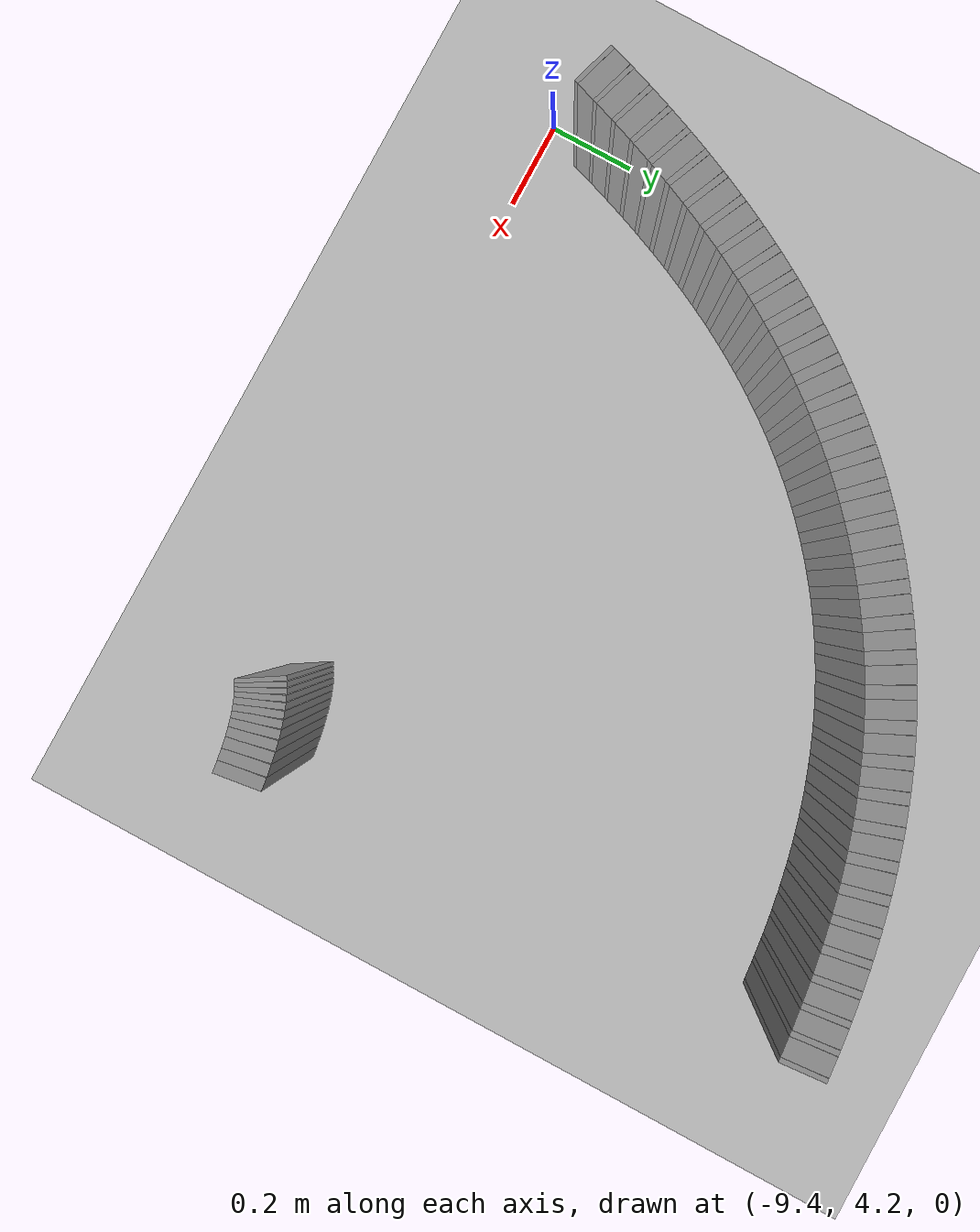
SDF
<sdf version="1.6">
 <world name="default">
  <include><uri>model://ground_plane</uri></include>
  <include><uri>model://sun</uri></include>
  <model name="wall_279_outward">
   <static>true</static>
   <link name="link">
    <collision name="collision">
     <geometry><box><size>0.027624193487421504 0.1 0.45</size></box></geometry>
    </collision>
    <visual name="visual">
     <geometry><box><size>0.027624193487421504 0.1 0.45</size></box></geometry>
     <material>
      <script><uri>file://media/materials/scripts/gazebo.material</uri><name>Gazebo/Gray</name></script>
     </material>
    </visual>
   </link>
   <pose>-7.869724357515869 4.355291385352773 0.225 0 0 -3.007626183691649</pose>
  </model>
  <model name="wall_280_outward">
   <static>true</static>
   <link name="link">
    <collision name="collision">
     <geometry><box><size>0.025439550026450423 0.1 0.45</size></box></geometry>
    </collision>
    <visual name="visual">
     <geometry><box><size>0.025439550026450423 0.1 0.45</size></box></geometry>
     <material>
      <script><uri>file://media/materials/scripts/gazebo.material</uri><name>Gazebo/Gray</name></script>
     </material>
    </visual>
   </link>
   <pose>-7.895969162948488 4.351414851526046 0.225 0 0 -2.981177422573036</pose>
  </model>
  <model name="wall_281_outward">
   <static>true</static>
   <link name="link">
    <collision name="collision">
     <geometry><box><size>0.02325595829545083 0.1 0.45</size></box></geometry>
    </collision>
    <visual name="visual">
     <geometry><box><size>0.02325595829545083 0.1 0.45</size></box></geometry>
     <material>
      <script><uri>file://media/materials/scripts/gazebo.material</uri><name>Gazebo/Gray</name></script>
     </material>
    </visual>
   </link>
   <pose>-7.919944777408493 4.347189300669172 0.225 0 0 -2.9517855076906967</pose>
  </model>
  <model name="wall_282_outward">
   <static>true</static>
   <link name="link">
    <collision name="collision">
     <geometry><box><size>0.02110596061446312 0.1 0.45</size></box></geometry>
    </collision>
    <visual name="visual">
     <geometry><box><size>0.02110596061446312 0.1 0.45</size></box></geometry>
     <material>
      <script><uri>file://media/materials/scripts/gazebo.material</uri><name>Gazebo/Gray</name></script>
     </material>
    </visual>
   </link>
   <pose>-7.941657732586261 4.342671035495469 0.225 0 0 -2.9195096412037693</pose>
  </model>
  <model name="wall_283_outward">
   <static>true</static>
   <link name="link">
    <collision name="collision">
     <geometry><box><size>0.01903454024967686 0.1 0.45</size></box></geometry>
    </collision>
    <visual name="visual">
     <geometry><box><size>0.01903454024967686 0.1 0.45</size></box></geometry>
     <material>
      <script><uri>file://media/materials/scripts/gazebo.material</uri><name>Gazebo/Gray</name></script>
     </material>
    </visual>
   </link>
   <pose>-7.9611558968602605 4.337926235347094 0.225 0 0 -2.8844537898732194</pose>
  </model>
  <model name="wall_284_outward">
   <static>true</static>
   <link name="link">
    <collision name="collision">
     <geometry><box><size>0.01707278313979548 0.1 0.45</size></box></geometry>
    </collision>
    <visual name="visual">
     <geometry><box><size>0.01707278313979548 0.1 0.45</size></box></geometry>
     <material>
      <script><uri>file://media/materials/scripts/gazebo.material</uri><name>Gazebo/Gray</name></script>
     </material>
    </visual>
   </link>
   <pose>-7.978528473659482 4.33302590181818 0.225 0 0 -2.846827199626863</pose>
  </model>
  <model name="wall_285_outward">
   <static>true</static>
   <link name="link">
    <collision name="collision">
     <geometry><box><size>0.01525357659476624 0.1 0.45</size></box></geometry>
    </collision>
    <visual name="visual">
     <geometry><box><size>0.01525357659476624 0.1 0.45</size></box></geometry>
     <material>
      <script><uri>file://media/materials/scripts/gazebo.material</uri><name>Gazebo/Gray</name></script>
     </material>
    </visual>
   </link>
   <pose>-7.993900114813201 4.328040231288803 0.225 0 0 -2.8068336294976772</pose>
  </model>
  <model name="wall_286_outward">
   <static>true</static>
   <link name="link">
    <collision name="collision">
     <geometry><box><size>0.013631853316110455 0.1 0.45</size></box></geometry>
    </collision>
    <visual name="visual">
     <geometry><box><size>0.013631853316110455 0.1 0.45</size></box></geometry>
     <material>
      <script><uri>file://media/materials/scripts/gazebo.material</uri><name>Gazebo/Gray</name></script>
     </material>
    </visual>
   </link>
   <pose>-8.007441250879353 4.323026480998138 0.225 0 0 -2.764771435005797</pose>
  </model>
  <model name="wall_287_outward">
   <static>true</static>
   <link name="link">
    <collision name="collision">
     <geometry><box><size>0.01223701877552563 0.1 0.45</size></box></geometry>
    </collision>
    <visual name="visual">
     <geometry><box><size>0.01223701877552563 0.1 0.45</size></box></geometry>
     <material>
      <script><uri>file://media/materials/scripts/gazebo.material</uri><name>Gazebo/Gray</name></script>
     </material>
    </visual>
   </link>
   <pose>-8.019364226202356 4.318020244604696 0.225 0 0 -2.720998843969237</pose>
  </model>
  <model name="wall_288_outward">
   <static>true</static>
   <link name="link">
    <collision name="collision">
     <geometry><box><size>0.011098433787889682 0.1 0.45</size></box></geometry>
    </collision>
    <visual name="visual">
     <geometry><box><size>0.011098433787889682 0.1 0.45</size></box></geometry>
     <material>
      <script><uri>file://media/materials/scripts/gazebo.material</uri><name>Gazebo/Gray</name></script>
     </material>
    </visual>
   </link>
   <pose>-8.029907709757879 4.313030087359676 0.225 0 0 -2.6758750504051396</pose>
  </model>
  <model name="wall_289_outward">
   <static>true</static>
   <link name="link">
    <collision name="collision">
     <geometry><box><size>0.010237272014352473 0.1 0.45</size></box></geometry>
    </collision>
    <visual name="visual">
     <geometry><box><size>0.010237272014352473 0.1 0.45</size></box></geometry>
     <material>
      <script><uri>file://media/materials/scripts/gazebo.material</uri><name>Gazebo/Gray</name></script>
     </material>
    </visual>
   </link>
   <pose>-8.03932874992063 4.308031403248322 0.225 0 0 -2.629816989019771</pose>
  </model>
  <model name="wall_290_outward">
   <static>true</static>
   <link name="link">
    <collision name="collision">
     <geometry><box><size>0.009656888265361842 0.1 0.45</size></box></geometry>
    </collision>
    <visual name="visual">
     <geometry><box><size>0.009656888265361842 0.1 0.45</size></box></geometry>
     <material>
      <script><uri>file://media/materials/scripts/gazebo.material</uri><name>Gazebo/Gray</name></script>
     </material>
    </visual>
   </link>
   <pose>-8.047886645311548 4.302966508058241 0.225 0 0 -2.583214382334047</pose>
  </model>
  <model name="wall_270_inward">
   <static>true</static>
   <link name="link">
    <collision name="collision">
     <geometry><box><size>0.010735600341460455 0.1 0.45</size></box></geometry>
    </collision>
    <visual name="visual">
     <geometry><box><size>0.010735600341460455 0.1 0.45</size></box></geometry>
     <material>
      <script><uri>file://media/materials/scripts/gazebo.material</uri><name>Gazebo/Gray</name></script>
     </material>
    </visual>
   </link>
   <pose>-7.891560669244129 5.559361094623048 0.225 0 0 -3.0607442631192687</pose>
  </model>
  <model name="wall_271_inward">
   <static>true</static>
   <link name="link">
    <collision name="collision">
     <geometry><box><size>0.04347126820323582 0.1 0.45</size></box></geometry>
    </collision>
    <visual name="visual">
     <geometry><box><size>0.04347126820323582 0.1 0.45</size></box></geometry>
     <material>
      <script><uri>file://media/materials/scripts/gazebo.material</uri><name>Gazebo/Gray</name></script>
     </material>
    </visual>
   </link>
   <pose>-7.918559000275927 5.556978463187139 0.225 0 0 -3.0517978101576215</pose>
  </model>
  <model name="wall_272_inward">
   <static>true</static>
   <link name="link">
    <collision name="collision">
     <geometry><box><size>0.01238730337958927 0.1 0.45</size></box></geometry>
    </collision>
    <visual name="visual">
     <geometry><box><size>0.01238730337958927 0.1 0.45</size></box></geometry>
     <material>
      <script><uri>file://media/materials/scripts/gazebo.material</uri><name>Gazebo/Gray</name></script>
     </material>
    </visual>
   </link>
   <pose>-7.946369701154595 5.554410277882978 0.225 0 0 -3.0414748740017017</pose>
  </model>
  <model name="wall_273_inward">
   <static>true</static>
   <link name="link">
    <collision name="collision">
     <geometry><box><size>0.04304056256467394 0.1 0.45</size></box></geometry>
    </collision>
    <visual name="visual">
     <geometry><box><size>0.04304056256467394 0.1 0.45</size></box></geometry>
     <material>
      <script><uri>file://media/materials/scripts/gazebo.material</uri><name>Gazebo/Gray</name></script>
     </material>
    </visual>
   </link>
   <pose>-7.973921509074186 5.551419331948791 0.225 0 0 -3.031151937845874</pose>
  </model>
  <model name="wall_274_inward">
   <static>true</static>
   <link name="link">
    <collision name="collision">
     <geometry><box><size>0.014115126980035619 0.1 0.45</size></box></geometry>
    </collision>
    <visual name="visual">
     <geometry><box><size>0.014115126980035619 0.1 0.45</size></box></geometry>
     <material>
      <script><uri>file://media/materials/scripts/gazebo.material</uri><name>Gazebo/Gray</name></script>
     </material>
    </visual>
   </link>
   <pose>-8.002315611840732 5.548187130665517 0.225 0 0 -3.0193890607687894</pose>
  </model>
  <model name="wall_275_inward">
   <static>true</static>
   <link name="link">
    <collision name="collision">
     <geometry><box><size>0.0426173361815276 0.1 0.45</size></box></geometry>
    </collision>
    <visual name="visual">
     <geometry><box><size>0.0426173361815276 0.1 0.45</size></box></geometry>
     <material>
      <script><uri>file://media/materials/scripts/gazebo.material</uri><name>Gazebo/Gray</name></script>
     </material>
    </visual>
   </link>
   <pose>-8.030438283449675 5.544480700100579 0.225 0 0 -3.0076261836916522</pose>
  </model>
  <model name="wall_276_inward">
   <static>true</static>
   <link name="link">
    <collision name="collision">
     <geometry><box><size>0.01586879412806351 0.1 0.45</size></box></geometry>
    </collision>
    <visual name="visual">
     <geometry><box><size>0.01586879412806351 0.1 0.45</size></box></geometry>
     <material>
      <script><uri>file://media/materials/scripts/gazebo.material</uri><name>Gazebo/Gray</name></script>
     </material>
    </visual>
   </link>
   <pose>-8.059404626043115 5.540470925928814 0.225 0 0 -2.9944018031323303</pose>
  </model>
  <model name="wall_277_inward">
   <static>true</static>
   <link name="link">
    <collision name="collision">
     <geometry><box><size>0.042192850241724714 0.1 0.45</size></box></geometry>
    </collision>
    <visual name="visual">
     <geometry><box><size>0.042192850241724714 0.1 0.45</size></box></geometry>
     <material>
      <script><uri>file://media/materials/scripts/gazebo.material</uri><name>Gazebo/Gray</name></script>
     </material>
    </visual>
   </link>
   <pose>-8.088078797290013 5.535937575397432 0.225 0 0 -2.981177422573035</pose>
  </model>
  <model name="wall_278_inward">
   <static>true</static>
   <link name="link">
    <collision name="collision">
     <geometry><box><size>0.01763451415564981 0.1 0.45</size></box></geometry>
    </collision>
    <visual name="visual">
     <geometry><box><size>0.01763451415564981 0.1 0.45</size></box></geometry>
     <material>
      <script><uri>file://media/materials/scripts/gazebo.material</uri><name>Gazebo/Gray</name></script>
     </material>
    </visual>
   </link>
   <pose>-8.117586782645187 5.5310317614662665 0.225 0 0 -2.9664814651318876</pose>
  </model>
  <model name="wall_279_inward">
   <static>true</static>
   <link name="link">
    <collision name="collision">
     <geometry><box><size>0.0417577681989477 0.1 0.45</size></box></geometry>
    </collision>
    <visual name="visual">
     <geometry><box><size>0.0417577681989477 0.1 0.45</size></box></geometry>
     <material>
      <script><uri>file://media/materials/scripts/gazebo.material</uri><name>Gazebo/Gray</name></script>
     </material>
    </visual>
   </link>
   <pose>-8.146773111628814 5.525556431074787 0.225 0 0 -2.9517855076906923</pose>
  </model>
  <model name="wall_280_inward">
   <static>true</static>
   <link name="link">
    <collision name="collision">
     <geometry><box><size>0.019364679333388382 0.1 0.45</size></box></geometry>
    </collision>
    <visual name="visual">
     <geometry><box><size>0.019364679333388382 0.1 0.45</size></box></geometry>
     <material>
      <script><uri>file://media/materials/scripts/gazebo.material</uri><name>Gazebo/Gray</name></script>
     </material>
    </visual>
   </link>
   <pose>-8.17675475832919 5.519637257806971 0.225 0 0 -2.9356475744472035</pose>
  </model>
  <model name="wall_281_inward">
   <static>true</static>
   <link name="link">
    <collision name="collision">
     <geometry><box><size>0.04130739376390568 0.1 0.45</size></box></geometry>
    </collision>
    <visual name="visual">
     <geometry><box><size>0.04130739376390568 0.1 0.45</size></box></geometry>
     <material>
      <script><uri>file://media/materials/scripts/gazebo.material</uri><name>Gazebo/Gray</name></script>
     </material>
    </visual>
   </link>
   <pose>-8.20637895007662 5.513108069682339 0.225 0 0 -2.919509641203761</pose>
  </model>
  <model name="wall_282_inward">
   <static>true</static>
   <link name="link">
    <collision name="collision">
     <geometry><box><size>0.021032433800331155 0.1 0.45</size></box></geometry>
    </collision>
    <visual name="visual">
     <geometry><box><size>0.021032433800331155 0.1 0.45</size></box></geometry>
     <material>
      <script><uri>file://media/materials/scripts/gazebo.material</uri><name>Gazebo/Gray</name></script>
     </material>
    </visual>
   </link>
   <pose>-8.236741180412277 5.50606308803868 0.225 0 0 -2.90198171553848</pose>
  </model>
  <model name="wall_283_inward">
   <static>true</static>
   <link name="link">
    <collision name="collision">
     <geometry><box><size>0.040841681814065764 0.1 0.45</size></box></geometry>
    </collision>
    <visual name="visual">
     <geometry><box><size>0.040841681814065764 0.1 0.45</size></box></geometry>
     <material>
      <script><uri>file://media/materials/scripts/gazebo.material</uri><name>Gazebo/Gray</name></script>
     </material>
    </visual>
   </link>
   <pose>-8.266706388615988 5.4983740134835415 0.225 0 0 -2.8844537898732256</pose>
  </model>
  <model name="wall_284_inward">
   <static>true</static>
   <link name="link">
    <collision name="collision">
     <geometry><box><size>0.022574622415585423 0.1 0.45</size></box></geometry>
    </collision>
    <visual name="visual">
     <geometry><box><size>0.022574622415585423 0.1 0.45</size></box></geometry>
     <material>
      <script><uri>file://media/materials/scripts/gazebo.material</uri><name>Gazebo/Gray</name></script>
     </material>
    </visual>
   </link>
   <pose>-8.297316093611173 5.490105320047276 0.225 0 0 -2.865640494750076</pose>
  </model>
  <model name="wall_285_inward">
   <static>true</static>
   <link name="link">
    <collision name="collision">
     <geometry><box><size>0.04036176268120286 0.1 0.45</size></box></geometry>
    </collision>
    <visual name="visual">
     <geometry><box><size>0.04036176268120286 0.1 0.45</size></box></geometry>
     <material>
      <script><uri>file://media/materials/scripts/gazebo.material</uri><name>Gazebo/Gray</name></script>
     </material>
    </visual>
   </link>
   <pose>-8.3274868491489 5.48116708578867 0.225 0 0 -2.8468271996268455</pose>
  </model>
  <model name="wall_286_inward">
   <static>true</static>
   <link name="link">
    <collision name="collision">
     <geometry><box><size>0.023994542880944863 0.1 0.45</size></box></geometry>
    </collision>
    <visual name="visual">
     <geometry><box><size>0.023994542880944863 0.1 0.45</size></box></geometry>
     <material>
      <script><uri>file://media/materials/scripts/gazebo.material</uri><name>Gazebo/Gray</name></script>
     </material>
    </visual>
   </link>
   <pose>-8.358205180956833 5.471589988342457 0.225 0 0 -2.8268304145622385</pose>
  </model>
  <model name="wall_287_inward">
   <static>true</static>
   <link name="link">
    <collision name="collision">
     <geometry><box><size>0.039873766235209225 0.1 0.45</size></box></geometry>
    </collision>
    <visual name="visual">
     <geometry><box><size>0.039873766235209225 0.1 0.45</size></box></geometry>
     <material>
      <script><uri>file://media/materials/scripts/gazebo.material</uri><name>Gazebo/Gray</name></script>
     </material>
    </visual>
   </link>
   <pose>-8.38844320354308 5.461325653192186 0.225 0 0 -2.806833629497638</pose>
  </model>
  <model name="wall_288_inward">
   <static>true</static>
   <link name="link">
    <collision name="collision">
     <geometry><box><size>0.025235456295751447 0.1 0.45</size></box></geometry>
    </collision>
    <visual name="visual">
     <geometry><box><size>0.025235456295751447 0.1 0.45</size></box></geometry>
     <material>
      <script><uri>file://media/materials/scripts/gazebo.material</uri><name>Gazebo/Gray</name></script>
     </material>
    </visual>
   </link>
   <pose>-8.419100879950468 5.450380410842451 0.225 0 0 -2.7858025322517457</pose>
  </model>
  <model name="wall_289_inward">
   <static>true</static>
   <link name="link">
    <collision name="collision">
     <geometry><box><size>0.03938624689676986 0.1 0.45</size></box></geometry>
    </collision>
    <visual name="visual">
     <geometry><box><size>0.03938624689676986 0.1 0.45</size></box></geometry>
     <material>
      <script><uri>file://media/materials/scripts/gazebo.material</uri><name>Gazebo/Gray</name></script>
     </material>
    </visual>
   </link>
   <pose>-8.449239813982276 5.43873885232133 0.225 0 0 -2.764771435005777</pose>
  </model>
  <model name="wall_290_inward">
   <static>true</static>
   <link name="link">
    <collision name="collision">
     <geometry><box><size>0.02626145792154517 0.1 0.45</size></box></geometry>
    </collision>
    <visual name="visual">
     <geometry><box><size>0.02626145792154517 0.1 0.45</size></box></geometry>
     <material>
      <script><uri>file://media/materials/scripts/gazebo.material</uri><name>Gazebo/Gray</name></script>
     </material>
    </visual>
   </link>
   <pose>-8.479652049620181 5.426394730213539 0.225 0 0 -2.742885139487527</pose>
  </model>
  <model name="wall_291_inward">
   <static>true</static>
   <link name="link">
    <collision name="collision">
     <geometry><box><size>0.03891032875381097 0.1 0.45</size></box></geometry>
    </collision>
    <visual name="visual">
     <geometry><box><size>0.03891032875381097 0.1 0.45</size></box></geometry>
     <material>
      <script><uri>file://media/materials/scripts/gazebo.material</uri><name>Gazebo/Gray</name></script>
     </material>
    </visual>
   </link>
   <pose>-8.509512432287078 5.413353425509882 0.225 0 0 -2.720998843969259</pose>
  </model>
  <model name="wall_292_inward">
   <static>true</static>
   <link name="link">
    <collision name="collision">
     <geometry><box><size>0.027071979219000834 0.1 0.45</size></box></geometry>
    </collision>
    <visual name="visual">
     <geometry><box><size>0.027071979219000834 0.1 0.45</size></box></geometry>
     <material>
      <script><uri>file://media/materials/scripts/gazebo.material</uri><name>Gazebo/Gray</name></script>
     </material>
    </visual>
   </link>
   <pose>-8.539500467760288 5.399605701239167 0.225 0 0 -2.6984369471871905</pose>
  </model>
  <model name="wall_293_inward">
   <static>true</static>
   <link name="link">
    <collision name="collision">
     <geometry><box><size>0.03845773086274184 0.1 0.45</size></box></geometry>
    </collision>
    <visual name="visual">
     <geometry><box><size>0.03845773086274184 0.1 0.45</size></box></geometry>
     <material>
      <script><uri>file://media/materials/scripts/gazebo.material</uri><name>Gazebo/Gray</name></script>
     </material>
    </visual>
   </link>
   <pose>-8.568909904190493 5.385166577764008 0.225 0 0 -2.675875050405166</pose>
  </model>
  <model name="wall_294_inward">
   <static>true</static>
   <link name="link">
    <collision name="collision">
     <geometry><box><size>0.027632394270069388 0.1 0.45</size></box></geometry>
    </collision>
    <visual name="visual">
     <geometry><box><size>0.027632394270069388 0.1 0.45</size></box></geometry>
     <material>
      <script><uri>file://media/materials/scripts/gazebo.material</uri><name>Gazebo/Gray</name></script>
     </material>
    </visual>
   </link>
   <pose>-8.598289511569359 5.370044608904638 0.225 0 0 -2.652846019712436</pose>
  </model>
  <model name="wall_295_inward">
   <static>true</static>
   <link name="link">
    <collision name="collision">
     <geometry><box><size>0.03804044642152871 0.1 0.45</size></box></geometry>
    </collision>
    <visual name="visual">
     <geometry><box><size>0.03804044642152871 0.1 0.45</size></box></geometry>
     <material>
      <script><uri>file://media/materials/scripts/gazebo.material</uri><name>Gazebo/Gray</name></script>
     </material>
    </visual>
   </link>
   <pose>-8.627071418126349 5.354242931883666 0.225 0 0 -2.629816989019727</pose>
  </model>
  <model name="wall_296_inward">
   <static>true</static>
   <link name="link">
    <collision name="collision">
     <geometry><box><size>0.027959033788097668 0.1 0.45</size></box></geometry>
    </collision>
    <visual name="visual">
     <geometry><box><size>0.027959033788097668 0.1 0.45</size></box></geometry>
     <material>
      <script><uri>file://media/materials/scripts/gazebo.material</uri><name>Gazebo/Gray</name></script>
     </material>
    </visual>
   </link>
   <pose>-8.655680291059829 5.33779997363693 0.225 0 0 -2.606515685676863</pose>
  </model>
  <model name="wall_297_inward">
   <static>true</static>
   <link name="link">
    <collision name="collision">
     <geometry><box><size>0.03767086739521082 0.1 0.45</size></box></geometry>
    </collision>
    <visual name="visual">
     <geometry><box><size>0.03767086739521082 0.1 0.45</size></box></geometry>
     <material>
      <script><uri>file://media/materials/scripts/gazebo.material</uri><name>Gazebo/Gray</name></script>
     </material>
    </visual>
   </link>
   <pose>-8.683680504355348 5.320692487564895 0.225 0 0 -2.583214382334083</pose>
  </model>
  <model name="wall_298_inward">
   <static>true</static>
   <link name="link">
    <collision name="collision">
     <geometry><box><size>0.028053663289969222 0.1 0.45</size></box></geometry>
    </collision>
    <visual name="visual">
     <geometry><box><size>0.028053663289969222 0.1 0.45</size></box></geometry>
     <material>
      <script><uri>file://media/materials/scripts/gazebo.material</uri><name>Gazebo/Gray</name></script>
     </material>
    </visual>
   </link>
   <pose>-8.711374511755185 5.303005599117732 0.225 0 0 -2.5598341995876543</pose>
  </model>
  <model name="wall_299_inward">
   <static>true</static>
   <link name="link">
    <collision name="collision">
     <geometry><box><size>0.03735881839572352 0.1 0.45</size></box></geometry>
    </collision>
    <visual name="visual">
     <geometry><box><size>0.03735881839572352 0.1 0.45</size></box></geometry>
     <material>
      <script><uri>file://media/materials/scripts/gazebo.material</uri><name>Gazebo/Gray</name></script>
     </material>
    </visual>
   </link>
   <pose>-8.738456277288392 5.284671670261639 0.225 0 0 -2.5364540168411835</pose>
  </model>
  <model name="wall_300_inward">
   <static>true</static>
   <link name="link">
    <collision name="collision">
     <geometry><box><size>0.02793282164281251 0.1 0.45</size></box></geometry>
    </collision>
    <visual name="visual">
     <geometry><box><size>0.02793282164281251 0.1 0.45</size></box></geometry>
     <material>
      <script><uri>file://media/materials/scripts/gazebo.material</uri><name>Gazebo/Gray</name></script>
     </material>
    </visual>
   </link>
   <pose>-8.765116903828394 5.265835025608119 0.225 0 0 -2.5131745628785103</pose>
  </model>
  <model name="wall_301_inward">
   <static>true</static>
   <link name="link">
    <collision name="collision">
     <geometry><box><size>0.03711497701369514 0.1 0.45</size></box></geometry>
    </collision>
    <visual name="visual">
     <geometry><box><size>0.03711497701369514 0.1 0.45</size></box></geometry>
     <material>
      <script><uri>file://media/materials/scripts/gazebo.material</uri><name>Gazebo/Gray</name></script>
     </material>
    </visual>
   </link>
   <pose>-8.791169380147352 5.246368848466695 0.225 0 0 -2.4898951089158494</pose>
  </model>
  <model name="wall_302_inward">
   <static>true</static>
   <link name="link">
    <collision name="collision">
     <geometry><box><size>0.027644833874272613 0.1 0.45</size></box></geometry>
    </collision>
    <visual name="visual">
     <geometry><box><size>0.027644833874272613 0.1 0.45</size></box></geometry>
     <material>
      <script><uri>file://media/materials/scripts/gazebo.material</uri><name>Gazebo/Gray</name></script>
     </material>
    </visual>
   </link>
   <pose>-8.816717138907435 5.226478294271677 0.225 0 0 -2.4668557091356194</pose>
  </model>
  <model name="wall_303_inward">
   <static>true</static>
   <link name="link">
    <collision name="collision">
     <geometry><box><size>0.03694777607545934 0.1 0.45</size></box></geometry>
    </collision>
    <visual name="visual">
     <geometry><box><size>0.03694777607545934 0.1 0.45</size></box></geometry>
     <material>
      <script><uri>file://media/materials/scripts/gazebo.material</uri><name>Gazebo/Gray</name></script>
     </material>
    </visual>
   </link>
   <pose>-8.841666705848342 5.205973785373917 0.225 0 0 -2.44381630935538</pose>
  </model>
  <model name="wall_304_inward">
   <static>true</static>
   <link name="link">
    <collision name="collision">
     <geometry><box><size>0.02719166804378759 0.1 0.45</size></box></geometry>
    </collision>
    <visual name="visual">
     <geometry><box><size>0.02719166804378759 0.1 0.45</size></box></geometry>
     <material>
      <script><uri>file://media/materials/scripts/gazebo.material</uri><name>Gazebo/Gray</name></script>
     </material>
    </visual>
   </link>
   <pose>-8.866040242257776 5.185134667977223 0.225 0 0 -2.4211546463821763</pose>
  </model>
  <model name="wall_305_inward">
   <static>true</static>
   <link name="link">
    <collision name="collision">
     <geometry><box><size>0.036863533200808624 0.1 0.45</size></box></geometry>
    </collision>
    <visual name="visual">
     <geometry><box><size>0.036863533200808624 0.1 0.45</size></box></geometry>
     <material>
      <script><uri>file://media/materials/scripts/gazebo.material</uri><name>Gazebo/Gray</name></script>
     </material>
    </visual>
   </link>
   <pose>-8.889830431608296 5.163694859107568 0.225 0 0 -2.398492983409019</pose>
  </model>
  <model name="wall_306_inward">
   <static>true</static>
   <link name="link">
    <collision name="collision">
     <geometry><box><size>0.0265989135395904 0.1 0.45</size></box></geometry>
    </collision>
    <visual name="visual">
     <geometry><box><size>0.0265989135395904 0.1 0.45</size></box></geometry>
     <material>
      <script><uri>file://media/materials/scripts/gazebo.material</uri><name>Gazebo/Gray</name></script>
     </material>
    </visual>
   </link>
   <pose>-8.912994654405589 5.14201148148231 0.225 0 0 -2.376325406640704</pose>
  </model>
  <model name="wall_307_inward">
   <static>true</static>
   <link name="link">
    <collision name="collision">
     <geometry><box><size>0.036867934156063126 0.1 0.45</size></box></geometry>
    </collision>
    <visual name="visual">
     <geometry><box><size>0.036867934156063126 0.1 0.45</size></box></geometry>
     <material>
      <script><uri>file://media/materials/scripts/gazebo.material</uri><name>Gazebo/Gray</name></script>
     </material>
    </visual>
   </link>
   <pose>-8.935594394781848 5.119737248473655 0.225 0 0 -2.3541578298723884</pose>
  </model>
  <model name="wall_308_inward">
   <static>true</static>
   <link name="link">
    <collision name="collision">
     <geometry><box><size>0.02589816185256312 0.1 0.45</size></box></geometry>
    </collision>
    <visual name="visual">
     <geometry><box><size>0.02589816185256312 0.1 0.45</size></box></geometry>
     <material>
      <script><uri>file://media/materials/scripts/gazebo.material</uri><name>Gazebo/Gray</name></script>
     </material>
    </visual>
   </link>
   <pose>-8.957540177379684 5.097305861231595 0.225 0 0 -2.3325743526031237</pose>
  </model>
  <model name="wall_309_inward">
   <static>true</static>
   <link name="link">
    <collision name="collision">
     <geometry><box><size>0.036965000668324886 0.1 0.45</size></box></geometry>
    </collision>
    <visual name="visual">
     <geometry><box><size>0.036965000668324886 0.1 0.45</size></box></geometry>
     <material>
      <script><uri>file://media/materials/scripts/gazebo.material</uri><name>Gazebo/Gray</name></script>
     </material>
    </visual>
   </link>
   <pose>-8.978942932953322 5.074289456928888 0.225 0 0 -2.3109908753337987</pose>
  </model>
  <model name="wall_310_inward">
   <static>true</static>
   <link name="link">
    <collision name="collision">
     <geometry><box><size>0.025069014930355616 0.1 0.45</size></box></geometry>
    </collision>
    <visual name="visual">
     <geometry><box><size>0.025069014930355616 0.1 0.45</size></box></geometry>
     <material>
      <script><uri>file://media/materials/scripts/gazebo.material</uri><name>Gazebo/Gray</name></script>
     </material>
    </visual>
   </link>
   <pose>-8.999666598804875 5.051213856638995 0.225 0 0 -2.2900985097035873</pose>
  </model>
  <model name="wall_311_inward">
   <static>true</static>
   <link name="link">
    <collision name="collision">
     <geometry><box><size>0.03715620077426316 0.1 0.45</size></box></geometry>
    </collision>
    <visual name="visual">
     <geometry><box><size>0.03715620077426316 0.1 0.45</size></box></geometry>
     <material>
      <script><uri>file://media/materials/scripts/gazebo.material</uri><name>Gazebo/Gray</name></script>
     </material>
    </visual>
   </link>
   <pose>-9.019870813331874 5.027556248096876 0.225 0 0 -2.2692061440734306</pose>
  </model>
  <model name="wall_312_inward">
   <static>true</static>
   <link name="link">
    <collision name="collision">
     <geometry><box><size>0.024155899842979146 0.1 0.45</size></box></geometry>
    </collision>
    <visual name="visual">
     <geometry><box><size>0.024155899842979146 0.1 0.45</size></box></geometry>
     <material>
      <script><uri>file://media/materials/scripts/gazebo.material</uri><name>Gazebo/Gray</name></script>
     </material>
    </visual>
   </link>
   <pose>-9.039394896021898 5.00392337517722 0.225 0 0 -2.2490748678039134</pose>
  </model>
  <model name="wall_313_inward">
   <static>true</static>
   <link name="link">
    <collision name="collision">
     <geometry><box><size>0.037439685839458975 0.1 0.45</size></box></geometry>
    </collision>
    <visual name="visual">
     <geometry><box><size>0.037439685839458975 0.1 0.45</size></box></geometry>
     <material>
      <script><uri>file://media/materials/scripts/gazebo.material</uri><name>Gazebo/Gray</name></script>
     </material>
    </visual>
   </link>
   <pose>-9.058423280622158 4.979709061302683 0.225 0 0 -2.2289435915343074</pose>
  </model>
  <model name="wall_314_inward">
   <static>true</static>
   <link name="link">
    <collision name="collision">
     <geometry><box><size>0.02312602095734539 0.1 0.45</size></box></geometry>
    </collision>
    <visual name="visual">
     <geometry><box><size>0.02312602095734539 0.1 0.45</size></box></geometry>
     <material>
      <script><uri>file://media/materials/scripts/gazebo.material</uri><name>Gazebo/Gray</name></script>
     </material>
    </visual>
   </link>
   <pose>-9.07676824598877 4.955616882981683 0.225 0 0 -2.209670714293544</pose>
  </model>
  <model name="wall_315_inward">
   <static>true</static>
   <link name="link">
    <collision name="collision">
     <geometry><box><size>0.03781017192018629 0.1 0.45</size></box></geometry>
    </collision>
    <visual name="visual">
     <geometry><box><size>0.03781017192018629 0.1 0.45</size></box></geometry>
     <material>
      <script><uri>file://media/materials/scripts/gazebo.material</uri><name>Gazebo/Gray</name></script>
     </material>
    </visual>
   </link>
   <pose>-9.094641566554547 4.930943656245745 0.225 0 0 -2.190397837052816</pose>
  </model>
  <model name="wall_316_inward">
   <static>true</static>
   <link name="link">
    <collision name="collision">
     <geometry><box><size>0.02201262623095195 0.1 0.45</size></box></geometry>
    </collision>
    <visual name="visual">
     <geometry><box><size>0.02201262623095195 0.1 0.45</size></box></geometry>
     <material>
      <script><uri>file://media/materials/scripts/gazebo.material</uri><name>Gazebo/Gray</name></script>
     </material>
    </visual>
   </link>
   <pose>-9.111845996018584 4.906476752500762 0.225 0 0 -2.172052952929099</pose>
  </model>
  <model name="wall_317_inward">
   <static>true</static>
   <link name="link">
    <collision name="collision">
     <geometry><box><size>0.03825817479355171 0.1 0.45</size></box></geometry>
    </collision>
    <visual name="visual">
     <geometry><box><size>0.03825817479355171 0.1 0.45</size></box></geometry>
     <material>
      <script><uri>file://media/materials/scripts/gazebo.material</uri><name>Gazebo/Gray</name></script>
     </material>
    </visual>
   </link>
   <pose>-9.128601781421118 4.8814304919557285 0.225 0 0 -2.153708068805381</pose>
  </model>
  <model name="wall_318_inward">
   <static>true</static>
   <link name="link">
    <collision name="collision">
     <geometry><box><size>0.020814488398573493 0.1 0.45</size></box></geometry>
    </collision>
    <visual name="visual">
     <geometry><box><size>0.020814488398573493 0.1 0.45</size></box></geometry>
     <material>
      <script><uri>file://media/materials/scripts/gazebo.material</uri><name>Gazebo/Gray</name></script>
     </material>
    </visual>
   </link>
   <pose>-9.14470869740622 4.8566736294538915 0.225 0 0 -2.1363617919231395</pose>
  </model>
  <model name="wall_319_inward">
   <static>true</static>
   <link name="link">
    <collision name="collision">
     <geometry><box><size>0.03877083458541957 0.1 0.45</size></box></geometry>
    </collision>
    <visual name="visual">
     <geometry><box><size>0.03877083458541957 0.1 0.45</size></box></geometry>
     <material>
      <script><uri>file://media/materials/scripts/gazebo.material</uri><name>Gazebo/Gray</name></script>
     </material>
    </visual>
   </link>
   <pose>-9.16038893334065 4.8313423804424165 0.225 0 0 -2.119015515041014</pose>
  </model>
  <model name="wall_320_inward">
   <static>true</static>
   <link name="link">
    <collision name="collision">
     <geometry><box><size>0.019554484631948206 0.1 0.45</size></box></geometry>
    </collision>
    <visual name="visual">
     <geometry><box><size>0.019554484631948206 0.1 0.45</size></box></geometry>
     <material>
      <script><uri>file://media/materials/scripts/gazebo.material</uri><name>Gazebo/Gray</name></script>
     </material>
    </visual>
   </link>
   <pose>-9.175450932216952 4.806371465910576 0.225 0 0 -2.1027193899140677</pose>
  </model>
  <model name="wall_321_inward">
   <static>true</static>
   <link name="link">
    <collision name="collision">
     <geometry><box><size>0.03933037172349408 0.1 0.45</size></box></geometry>
    </collision>
    <visual name="visual">
     <geometry><box><size>0.03933037172349408 0.1 0.45</size></box></geometry>
     <material>
      <script><uri>file://media/materials/scripts/gazebo.material</uri><name>Gazebo/Gray</name></script>
     </material>
    </visual>
   </link>
   <pose>-9.190106384916753 4.780836720483594 0.225 0 0 -2.0864232647871526</pose>
  </model>
  <model name="wall_322_inward">
   <static>true</static>
   <link name="link">
    <collision name="collision">
     <geometry><box><size>0.01824533047436818 0.1 0.45</size></box></geometry>
    </collision>
    <visual name="visual">
     <geometry><box><size>0.01824533047436818 0.1 0.45</size></box></geometry>
     <material>
      <script><uri>file://media/materials/scripts/gazebo.material</uri><name>Gazebo/Gray</name></script>
     </material>
    </visual>
   </link>
   <pose>-9.204179918144293 4.755724282162365 0.225 0 0 -2.0712182368495804</pose>
  </model>
  <model name="wall_323_inward">
   <static>true</static>
   <link name="link">
    <collision name="collision">
     <geometry><box><size>0.039916527379373096 0.1 0.45</size></box></geometry>
    </collision>
    <visual name="visual">
     <geometry><box><size>0.039916527379373096 0.1 0.45</size></box></geometry>
     <material>
      <script><uri>file://media/materials/scripts/gazebo.material</uri><name>Gazebo/Gray</name></script>
     </material>
    </visual>
   </link>
   <pose>-9.217865472764977 4.73006567875324 0.225 0 0 -2.0560132089120065</pose>
  </model>
  <model name="wall_324_inward">
   <static>true</static>
   <link name="link">
    <collision name="collision">
     <geometry><box><size>0.016944904093337133 0.1 0.45</size></box></geometry>
    </collision>
    <visual name="visual">
     <geometry><box><size>0.016944904093337133 0.1 0.45</size></box></geometry>
     <material>
      <script><uri>file://media/materials/scripts/gazebo.material</uri><name>Gazebo/Gray</name></script>
     </material>
    </visual>
   </link>
   <pose>-9.231019342703156 4.704861560352633 0.225 0 0 -2.0418919861893743</pose>
  </model>
  <model name="wall_325_inward">
   <static>true</static>
   <link name="link">
    <collision name="collision">
     <geometry><box><size>0.04050587838241271 0.1 0.45</size></box></geometry>
    </collision>
    <visual name="visual">
     <geometry><box><size>0.04050587838241271 0.1 0.45</size></box></geometry>
     <material>
      <script><uri>file://media/materials/scripts/gazebo.material</uri><name>Gazebo/Gray</name></script>
     </material>
    </visual>
   </link>
   <pose>-9.243800980031764 4.679137182176494 0.225 0 0 -2.0277707634665325</pose>
  </model>
  <model name="wall_326_inward">
   <static>true</static>
   <link name="link">
    <collision name="collision">
     <geometry><box><size>0.015662201350004408 0.1 0.45</size></box></geometry>
    </collision>
    <visual name="visual">
     <geometry><box><size>0.015662201350004408 0.1 0.45</size></box></geometry>
     <material>
      <script><uri>file://media/materials/scripts/gazebo.material</uri><name>Gazebo/Gray</name></script>
     </material>
    </visual>
   </link>
   <pose>-9.256100624876014 4.653890300929245 0.225 0 0 -2.014718558415606</pose>
  </model>
  <model name="wall_327_inward">
   <static>true</static>
   <link name="link">
    <collision name="collision">
     <geometry><box><size>0.04107513554062971 0.1 0.45</size></box></geometry>
    </collision>
    <visual name="visual">
     <geometry><box><size>0.04107513554062971 0.1 0.45</size></box></geometry>
     <material>
      <script><uri>file://media/materials/scripts/gazebo.material</uri><name>Gazebo/Gray</name></script>
     </material>
    </visual>
   </link>
   <pose>-9.268041714503676 4.628157747053938 0.225 0 0 -2.0016663533647088</pose>
  </model>
  <model name="wall_328_inward">
   <static>true</static>
   <link name="link">
    <collision name="collision">
     <geometry><box><size>0.014444637387253814 0.1 0.45</size></box></geometry>
    </collision>
    <visual name="visual">
     <geometry><box><size>0.014444637387253814 0.1 0.45</size></box></geometry>
     <material>
      <script><uri>file://media/materials/scripts/gazebo.material</uri><name>Gazebo/Gray</name></script>
     </material>
    </visual>
   </link>
   <pose>-9.27955674019669 4.602899204201661 0.225 0 0 -1.989628864836405</pose>
  </model>
  <model name="wall_329_inward">
   <static>true</static>
   <link name="link">
    <collision name="collision">
     <geometry><box><size>0.041601385881790715 0.1 0.45</size></box></geometry>
    </collision>
    <visual name="visual">
     <geometry><box><size>0.041601385881790715 0.1 0.45</size></box></geometry>
     <material>
      <script><uri>file://media/materials/scripts/gazebo.material</uri><name>Gazebo/Gray</name></script>
     </material>
    </visual>
   </link>
   <pose>-9.290724182888484 4.5771979272553445 0.225 0 0 -1.9775913763082673</pose>
  </model>
  <model name="wall_330_inward">
   <static>true</static>
   <link name="link">
    <collision name="collision">
     <geometry><box><size>0.013317950244393889 0.1 0.45</size></box></geometry>
    </collision>
    <visual name="visual">
     <geometry><box><size>0.013317950244393889 0.1 0.45</size></box></geometry>
     <material>
      <script><uri>file://media/materials/scripts/gazebo.material</uri><name>Gazebo/Gray</name></script>
     </material>
    </visual>
   </link>
   <pose>-9.30152105916339 4.5519502784224475 0.225 0 0 -1.9664928565920405</pose>
  </model>
  <model name="wall_331_inward">
   <static>true</static>
   <link name="link">
    <collision name="collision">
     <geometry><box><size>0.04206489134636837 0.1 0.45</size></box></geometry>
    </collision>
    <visual name="visual">
     <geometry><box><size>0.04206489134636837 0.1 0.45</size></box></geometry>
     <material>
      <script><uri>file://media/materials/scripts/gazebo.material</uri><name>Gazebo/Gray</name></script>
     </material>
    </visual>
   </link>
   <pose>-9.311978858295221 4.526309842161622 0.225 0 0 -1.9553943368757787</pose>
  </model>
  <model name="wall_332_inward">
   <static>true</static>
   <link name="link">
    <collision name="collision">
     <geometry><box><size>0.012301580180549233 0.1 0.45</size></box></geometry>
    </collision>
    <visual name="visual">
     <geometry><box><size>0.012301580180549233 0.1 0.45</size></box></geometry>
     <material>
      <script><uri>file://media/materials/scripts/gazebo.material</uri><name>Gazebo/Gray</name></script>
     </material>
    </visual>
   </link>
   <pose>-9.32211907369975 4.501089002708108 0.225 0 0 -1.9451428404993225</pose>
  </model>
  <model name="wall_333_inward">
   <static>true</static>
   <link name="link">
    <collision name="collision">
     <geometry><box><size>0.04244836392851289 0.1 0.45</size></box></geometry>
    </collision>
    <visual name="visual">
     <geometry><box><size>0.04244836392851289 0.1 0.45</size></box></geometry>
     <material>
      <script><uri>file://media/materials/scripts/gazebo.material</uri><name>Gazebo/Gray</name></script>
     </material>
    </visual>
   </link>
   <pose>-9.331926210005989 4.475531313979721 0.225 0 0 -1.9348913441226403</pose>
  </model>
  <model name="wall_334_inward">
   <static>true</static>
   <link name="link">
    <collision name="collision">
     <geometry><box><size>0.011418417872325379 0.1 0.45</size></box></geometry>
    </collision>
    <visual name="visual">
     <geometry><box><size>0.011418417872325379 0.1 0.45</size></box></geometry>
     <material>
      <script><uri>file://media/materials/scripts/gazebo.material</uri><name>Gazebo/Gray</name></script>
     </material>
    </visual>
   </link>
   <pose>-9.341466436437775 4.4503443996486105 0.225 0 0 -1.9253758523002795</pose>
  </model>
  <model name="wall_335_inward">
   <static>true</static>
   <link name="link">
    <collision name="collision">
     <geometry><box><size>0.0427421978968501 0.1 0.45</size></box></geometry>
    </collision>
    <visual name="visual">
     <geometry><box><size>0.0427421978968501 0.1 0.45</size></box></geometry>
     <material>
      <script><uri>file://media/materials/scripts/gazebo.material</uri><name>Gazebo/Gray</name></script>
     </material>
    </visual>
   </link>
   <pose>-9.350677573861756 4.424878992229292 0.225 0 0 -1.9158603604779796</pose>
  </model>
  <model name="wall_336_inward">
   <static>true</static>
   <link name="link">
    <collision name="collision">
     <geometry><box><size>0.010680426168981634 0.1 0.45</size></box></geometry>
    </collision>
    <visual name="visual">
     <geometry><box><size>0.010680426168981634 0.1 0.45</size></box></geometry>
     <material>
      <script><uri>file://media/materials/scripts/gazebo.material</uri><name>Gazebo/Gray</name></script>
     </material>
    </visual>
   </link>
   <pose>-9.35966806081522 4.399726332449046 0.225 0 0 -1.9069598878240688</pose>
  </model>
  <model name="wall_337_inward">
   <static>true</static>
   <link name="link">
    <collision name="collision">
     <geometry><box><size>0.042940681963015294 0.1 0.45</size></box></geometry>
    </collision>
    <visual name="visual">
     <geometry><box><size>0.042940681963015294 0.1 0.45</size></box></geometry>
     <material>
      <script><uri>file://media/materials/scripts/gazebo.material</uri><name>Gazebo/Gray</name></script>
     </material>
    </visual>
   </link>
   <pose>-9.368331321877498 4.37435420927674 0.225 0 0 -1.8980594151701664</pose>
  </model>
  <model name="wall_338_inward">
   <static>true</static>
   <link name="link">
    <collision name="collision">
     <geometry><box><size>0.010084803510493104 0.1 0.45</size></box></geometry>
    </collision>
    <visual name="visual">
     <geometry><box><size>0.010084803510493104 0.1 0.45</size></box></geometry>
     <material>
      <script><uri>file://media/materials/scripts/gazebo.material</uri><name>Gazebo/Gray</name></script>
     </material>
    </visual>
   </link>
   <pose>-9.376813727027763 4.349235159057791 0.225 0 0 -1.8896553133162721</pose>
  </model>
  <model name="wall_339_inward">
   <static>true</static>
   <link name="link">
    <collision name="collision">
     <geometry><box><size>0.04304419032832964 0.1 0.45</size></box></geometry>
    </collision>
    <visual name="visual">
     <geometry><box><size>0.04304419032832964 0.1 0.45</size></box></geometry>
     <material>
      <script><uri>file://media/materials/scripts/gazebo.material</uri><name>Gazebo/Gray</name></script>
     </material>
    </visual>
   </link>
   <pose>-9.384969259334808 4.323953700940258 0.225 0 0 -1.8812512114624746</pose>
  </model>
  <model name="wall_340_inward">
   <static>true</static>
   <link name="link">
    <collision name="collision">
     <geometry><box><size>0.0096377484545896 0.1 0.45</size></box></geometry>
    </collision>
    <visual name="visual">
     <geometry><box><size>0.0096377484545896 0.1 0.45</size></box></geometry>
     <material>
      <script><uri>file://media/materials/scripts/gazebo.material</uri><name>Gazebo/Gray</name></script>
     </material>
    </visual>
   </link>
   <pose>-9.392979309794185 4.2988602940347675 0.225 0 0 -1.87321966807055</pose>
  </model>
 </world>
</sdf>
